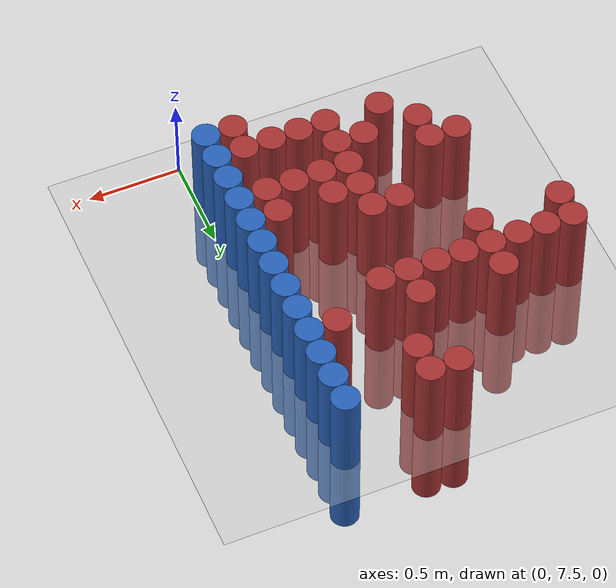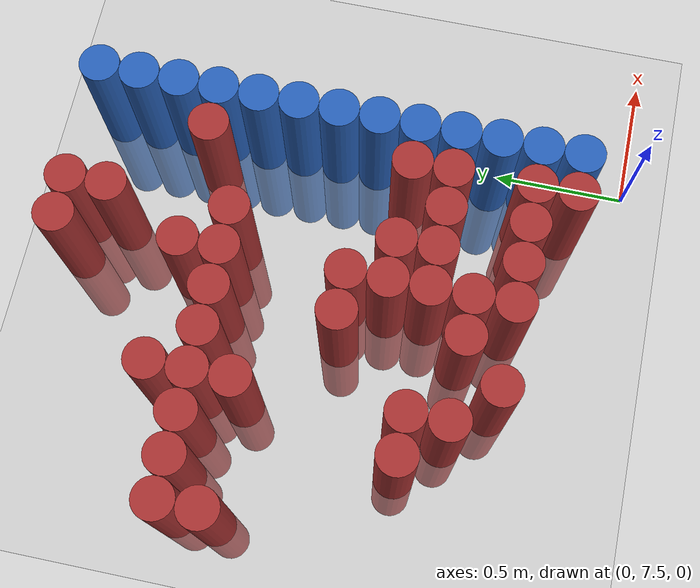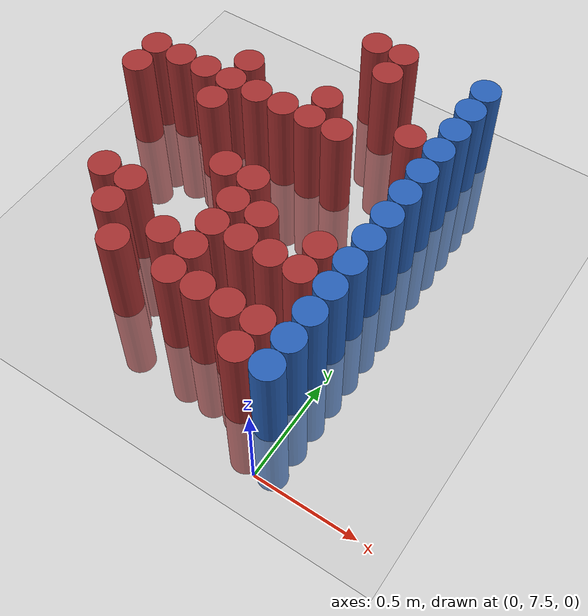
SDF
<sdf version="1.6">
 <world name="default">
  <model name="ground_plane">
   <static>1</static>
   <link name="link">
    <collision name="collision">
     <geometry><plane><normal>0 0 1</normal><size>100 100</size></plane></geometry>
     <surface><friction><ode><mu>100</mu><mu2>50</mu2></ode></friction></surface>
    </collision>
    <visual name="visual">
     <cast_shadows>0</cast_shadows>
     <geometry><plane><normal>0 0 1</normal><size>100 100</size></plane></geometry>
     <material>
      <script><uri>file://media/materials/scripts/gazebo.material</uri><name>Gazebo/Grey</name></script>
     </material>
    </visual>
   </link>
  </model>
  <model name="unit_cylinder_229">
   <static>1</static>
   <pose>-1.575000 8.775000 0.000000 0.000000 0.000000 0.000000</pose>
   <link name="link">
    <inertial>
     <mass>1</mass>
     <inertia><ixx>0.145833</ixx><ixy>0</ixy><ixz>0</ixz><iyy>0.145833</iyy><iyz>0</iyz><izz>0.125</izz></inertia>
    </inertial>
    <collision name="collision">
     <geometry><cylinder><radius>0.075000</radius><length>1</length></cylinder></geometry>
    </collision>
    <visual name="visual">
     <geometry><cylinder><radius>0.075000</radius><length>1</length></cylinder></geometry>
     <material>
      <ambient>0.648000 0.192000 0.192000 1</ambient>
      <diffuse>0.648000 0.192000 0.192000 1</diffuse>
     </material>
     <material>
      <script><name>Gazebo/Grey</name><uri>file://media/materials/scripts/gazebo.material</uri></script>
     </material>
    </visual>
   </link>
  </model>
  <model name="unit_cylinder_230">
   <static>1</static>
   <pose>-1.575000 8.925000 0.000000 0.000000 0.000000 0.000000</pose>
   <link name="link">
    <inertial>
     <mass>1</mass>
     <inertia><ixx>0.145833</ixx><ixy>0</ixy><ixz>0</ixz><iyy>0.145833</iyy><iyz>0</iyz><izz>0.125</izz></inertia>
    </inertial>
    <collision name="collision">
     <geometry><cylinder><radius>0.075000</radius><length>1</length></cylinder></geometry>
    </collision>
    <visual name="visual">
     <geometry><cylinder><radius>0.075000</radius><length>1</length></cylinder></geometry>
     <material>
      <ambient>0.648000 0.192000 0.192000 1</ambient>
      <diffuse>0.648000 0.192000 0.192000 1</diffuse>
     </material>
     <material>
      <script><name>Gazebo/Grey</name><uri>file://media/materials/scripts/gazebo.material</uri></script>
     </material>
    </visual>
   </link>
  </model>
  <model name="unit_cylinder_238">
   <static>1</static>
   <pose>-1.425000 8.925000 0.000000 0.000000 0.000000 0.000000</pose>
   <link name="link">
    <inertial>
     <mass>1</mass>
     <inertia><ixx>0.145833</ixx><ixy>0</ixy><ixz>0</ixz><iyy>0.145833</iyy><iyz>0</iyz><izz>0.125</izz></inertia>
    </inertial>
    <collision name="collision">
     <geometry><cylinder><radius>0.075000</radius><length>1</length></cylinder></geometry>
    </collision>
    <visual name="visual">
     <geometry><cylinder><radius>0.075000</radius><length>1</length></cylinder></geometry>
     <material>
      <ambient>0.648000 0.192000 0.192000 1</ambient>
      <diffuse>0.648000 0.192000 0.192000 1</diffuse>
     </material>
     <material>
      <script><name>Gazebo/Grey</name><uri>file://media/materials/scripts/gazebo.material</uri></script>
     </material>
    </visual>
   </link>
  </model>
  <model name="unit_cylinder_245">
   <static>1</static>
   <pose>-1.275000 8.175000 0.000000 0.000000 0.000000 0.000000</pose>
   <link name="link">
    <inertial>
     <mass>1</mass>
     <inertia><ixx>0.145833</ixx><ixy>0</ixy><ixz>0</ixz><iyy>0.145833</iyy><iyz>0</iyz><izz>0.125</izz></inertia>
    </inertial>
    <collision name="collision">
     <geometry><cylinder><radius>0.075000</radius><length>1</length></cylinder></geometry>
    </collision>
    <visual name="visual">
     <geometry><cylinder><radius>0.075000</radius><length>1</length></cylinder></geometry>
     <material>
      <ambient>0.648000 0.192000 0.192000 1</ambient>
      <diffuse>0.648000 0.192000 0.192000 1</diffuse>
     </material>
     <material>
      <script><name>Gazebo/Grey</name><uri>file://media/materials/scripts/gazebo.material</uri></script>
     </material>
    </visual>
   </link>
  </model>
  <model name="unit_cylinder_246">
   <static>1</static>
   <pose>-1.275000 8.925000 0.000000 0.000000 0.000000 0.000000</pose>
   <link name="link">
    <inertial>
     <mass>1</mass>
     <inertia><ixx>0.145833</ixx><ixy>0</ixy><ixz>0</ixz><iyy>0.145833</iyy><iyz>0</iyz><izz>0.125</izz></inertia>
    </inertial>
    <collision name="collision">
     <geometry><cylinder><radius>0.075000</radius><length>1</length></cylinder></geometry>
    </collision>
    <visual name="visual">
     <geometry><cylinder><radius>0.075000</radius><length>1</length></cylinder></geometry>
     <material>
      <ambient>0.648000 0.192000 0.192000 1</ambient>
      <diffuse>0.648000 0.192000 0.192000 1</diffuse>
     </material>
     <material>
      <script><name>Gazebo/Grey</name><uri>file://media/materials/scripts/gazebo.material</uri></script>
     </material>
    </visual>
   </link>
  </model>
  <model name="unit_cylinder_248">
   <static>1</static>
   <pose>-1.125000 8.025000 0.000000 0.000000 0.000000 0.000000</pose>
   <link name="link">
    <inertial>
     <mass>1</mass>
     <inertia><ixx>0.145833</ixx><ixy>0</ixy><ixz>0</ixz><iyy>0.145833</iyy><iyz>0</iyz><izz>0.125</izz></inertia>
    </inertial>
    <collision name="collision">
     <geometry><cylinder><radius>0.075000</radius><length>1</length></cylinder></geometry>
    </collision>
    <visual name="visual">
     <geometry><cylinder><radius>0.075000</radius><length>1</length></cylinder></geometry>
     <material>
      <ambient>0.648000 0.192000 0.192000 1</ambient>
      <diffuse>0.648000 0.192000 0.192000 1</diffuse>
     </material>
     <material>
      <script><name>Gazebo/Grey</name><uri>file://media/materials/scripts/gazebo.material</uri></script>
     </material>
    </visual>
   </link>
  </model>
  <model name="unit_cylinder_249">
   <static>1</static>
   <pose>-1.125000 8.175000 0.000000 0.000000 0.000000 0.000000</pose>
   <link name="link">
    <inertial>
     <mass>1</mass>
     <inertia><ixx>0.145833</ixx><ixy>0</ixy><ixz>0</ixz><iyy>0.145833</iyy><iyz>0</iyz><izz>0.125</izz></inertia>
    </inertial>
    <collision name="collision">
     <geometry><cylinder><radius>0.075000</radius><length>1</length></cylinder></geometry>
    </collision>
    <visual name="visual">
     <geometry><cylinder><radius>0.075000</radius><length>1</length></cylinder></geometry>
     <material>
      <ambient>0.648000 0.192000 0.192000 1</ambient>
      <diffuse>0.648000 0.192000 0.192000 1</diffuse>
     </material>
     <material>
      <script><name>Gazebo/Grey</name><uri>file://media/materials/scripts/gazebo.material</uri></script>
     </material>
    </visual>
   </link>
  </model>
  <model name="unit_cylinder_250">
   <static>1</static>
   <pose>-1.125000 8.775000 0.000000 0.000000 0.000000 0.000000</pose>
   <link name="link">
    <inertial>
     <mass>1</mass>
     <inertia><ixx>0.145833</ixx><ixy>0</ixy><ixz>0</ixz><iyy>0.145833</iyy><iyz>0</iyz><izz>0.125</izz></inertia>
    </inertial>
    <collision name="collision">
     <geometry><cylinder><radius>0.075000</radius><length>1</length></cylinder></geometry>
    </collision>
    <visual name="visual">
     <geometry><cylinder><radius>0.075000</radius><length>1</length></cylinder></geometry>
     <material>
      <ambient>0.648000 0.192000 0.192000 1</ambient>
      <diffuse>0.648000 0.192000 0.192000 1</diffuse>
     </material>
     <material>
      <script><name>Gazebo/Grey</name><uri>file://media/materials/scripts/gazebo.material</uri></script>
     </material>
    </visual>
   </link>
  </model>
  <model name="unit_cylinder_251">
   <static>1</static>
   <pose>-1.125000 8.925000 0.000000 0.000000 0.000000 0.000000</pose>
   <link name="link">
    <inertial>
     <mass>1</mass>
     <inertia><ixx>0.145833</ixx><ixy>0</ixy><ixz>0</ixz><iyy>0.145833</iyy><iyz>0</iyz><izz>0.125</izz></inertia>
    </inertial>
    <collision name="collision">
     <geometry><cylinder><radius>0.075000</radius><length>1</length></cylinder></geometry>
    </collision>
    <visual name="visual">
     <geometry><cylinder><radius>0.075000</radius><length>1</length></cylinder></geometry>
     <material>
      <ambient>0.648000 0.192000 0.192000 1</ambient>
      <diffuse>0.648000 0.192000 0.192000 1</diffuse>
     </material>
     <material>
      <script><name>Gazebo/Grey</name><uri>file://media/materials/scripts/gazebo.material</uri></script>
     </material>
    </visual>
   </link>
  </model>
  <model name="unit_cylinder_252">
   <static>1</static>
   <pose>-1.125000 9.075000 0.000000 0.000000 0.000000 0.000000</pose>
   <link name="link">
    <inertial>
     <mass>1</mass>
     <inertia><ixx>0.145833</ixx><ixy>0</ixy><ixz>0</ixz><iyy>0.145833</iyy><iyz>0</iyz><izz>0.125</izz></inertia>
    </inertial>
    <collision name="collision">
     <geometry><cylinder><radius>0.075000</radius><length>1</length></cylinder></geometry>
    </collision>
    <visual name="visual">
     <geometry><cylinder><radius>0.075000</radius><length>1</length></cylinder></geometry>
     <material>
      <ambient>0.648000 0.192000 0.192000 1</ambient>
      <diffuse>0.648000 0.192000 0.192000 1</diffuse>
     </material>
     <material>
      <script><name>Gazebo/Grey</name><uri>file://media/materials/scripts/gazebo.material</uri></script>
     </material>
    </visual>
   </link>
  </model>
  <model name="unit_cylinder_253">
   <static>1</static>
   <pose>-0.975000 7.875000 0.000000 0.000000 0.000000 0.000000</pose>
   <link name="link">
    <inertial>
     <mass>1</mass>
     <inertia><ixx>0.145833</ixx><ixy>0</ixy><ixz>0</ixz><iyy>0.145833</iyy><iyz>0</iyz><izz>0.125</izz></inertia>
    </inertial>
    <collision name="collision">
     <geometry><cylinder><radius>0.075000</radius><length>1</length></cylinder></geometry>
    </collision>
    <visual name="visual">
     <geometry><cylinder><radius>0.075000</radius><length>1</length></cylinder></geometry>
     <material>
      <ambient>0.648000 0.192000 0.192000 1</ambient>
      <diffuse>0.648000 0.192000 0.192000 1</diffuse>
     </material>
     <material>
      <script><name>Gazebo/Grey</name><uri>file://media/materials/scripts/gazebo.material</uri></script>
     </material>
    </visual>
   </link>
  </model>
  <model name="unit_cylinder_254">
   <static>1</static>
   <pose>-0.975000 8.925000 0.000000 0.000000 0.000000 0.000000</pose>
   <link name="link">
    <inertial>
     <mass>1</mass>
     <inertia><ixx>0.145833</ixx><ixy>0</ixy><ixz>0</ixz><iyy>0.145833</iyy><iyz>0</iyz><izz>0.125</izz></inertia>
    </inertial>
    <collision name="collision">
     <geometry><cylinder><radius>0.075000</radius><length>1</length></cylinder></geometry>
    </collision>
    <visual name="visual">
     <geometry><cylinder><radius>0.075000</radius><length>1</length></cylinder></geometry>
     <material>
      <ambient>0.648000 0.192000 0.192000 1</ambient>
      <diffuse>0.648000 0.192000 0.192000 1</diffuse>
     </material>
     <material>
      <script><name>Gazebo/Grey</name><uri>file://media/materials/scripts/gazebo.material</uri></script>
     </material>
    </visual>
   </link>
  </model>
  <model name="unit_cylinder_256">
   <static>1</static>
   <pose>-0.825000 8.025000 0.000000 0.000000 0.000000 0.000000</pose>
   <link name="link">
    <inertial>
     <mass>1</mass>
     <inertia><ixx>0.145833</ixx><ixy>0</ixy><ixz>0</ixz><iyy>0.145833</iyy><iyz>0</iyz><izz>0.125</izz></inertia>
    </inertial>
    <collision name="collision">
     <geometry><cylinder><radius>0.075000</radius><length>1</length></cylinder></geometry>
    </collision>
    <visual name="visual">
     <geometry><cylinder><radius>0.075000</radius><length>1</length></cylinder></geometry>
     <material>
      <ambient>0.648000 0.192000 0.192000 1</ambient>
      <diffuse>0.648000 0.192000 0.192000 1</diffuse>
     </material>
     <material>
      <script><name>Gazebo/Grey</name><uri>file://media/materials/scripts/gazebo.material</uri></script>
     </material>
    </visual>
   </link>
  </model>
  <model name="unit_cylinder_257">
   <static>1</static>
   <pose>-0.825000 8.475000 0.000000 0.000000 0.000000 0.000000</pose>
   <link name="link">
    <inertial>
     <mass>1</mass>
     <inertia><ixx>0.145833</ixx><ixy>0</ixy><ixz>0</ixz><iyy>0.145833</iyy><iyz>0</iyz><izz>0.125</izz></inertia>
    </inertial>
    <collision name="collision">
     <geometry><cylinder><radius>0.075000</radius><length>1</length></cylinder></geometry>
    </collision>
    <visual name="visual">
     <geometry><cylinder><radius>0.075000</radius><length>1</length></cylinder></geometry>
     <material>
      <ambient>0.648000 0.192000 0.192000 1</ambient>
      <diffuse>0.648000 0.192000 0.192000 1</diffuse>
     </material>
     <material>
      <script><name>Gazebo/Grey</name><uri>file://media/materials/scripts/gazebo.material</uri></script>
     </material>
    </visual>
   </link>
  </model>
  <model name="unit_cylinder_258">
   <static>1</static>
   <pose>-0.825000 8.925000 0.000000 0.000000 0.000000 0.000000</pose>
   <link name="link">
    <inertial>
     <mass>1</mass>
     <inertia><ixx>0.145833</ixx><ixy>0</ixy><ixz>0</ixz><iyy>0.145833</iyy><iyz>0</iyz><izz>0.125</izz></inertia>
    </inertial>
    <collision name="collision">
     <geometry><cylinder><radius>0.075000</radius><length>1</length></cylinder></geometry>
    </collision>
    <visual name="visual">
     <geometry><cylinder><radius>0.075000</radius><length>1</length></cylinder></geometry>
     <material>
      <ambient>0.648000 0.192000 0.192000 1</ambient>
      <diffuse>0.648000 0.192000 0.192000 1</diffuse>
     </material>
     <material>
      <script><name>Gazebo/Grey</name><uri>file://media/materials/scripts/gazebo.material</uri></script>
     </material>
    </visual>
   </link>
  </model>
  <model name="unit_cylinder_264">
   <static>1</static>
   <pose>-0.675000 7.875000 0.000000 0.000000 0.000000 0.000000</pose>
   <link name="link">
    <inertial>
     <mass>1</mass>
     <inertia><ixx>0.145833</ixx><ixy>0</ixy><ixz>0</ixz><iyy>0.145833</iyy><iyz>0</iyz><izz>0.125</izz></inertia>
    </inertial>
    <collision name="collision">
     <geometry><cylinder><radius>0.075000</radius><length>1</length></cylinder></geometry>
    </collision>
    <visual name="visual">
     <geometry><cylinder><radius>0.075000</radius><length>1</length></cylinder></geometry>
     <material>
      <ambient>0.648000 0.192000 0.192000 1</ambient>
      <diffuse>0.648000 0.192000 0.192000 1</diffuse>
     </material>
     <material>
      <script><name>Gazebo/Grey</name><uri>file://media/materials/scripts/gazebo.material</uri></script>
     </material>
    </visual>
   </link>
  </model>
  <model name="unit_cylinder_265">
   <static>1</static>
   <pose>-0.675000 8.025000 0.000000 0.000000 0.000000 0.000000</pose>
   <link name="link">
    <inertial>
     <mass>1</mass>
     <inertia><ixx>0.145833</ixx><ixy>0</ixy><ixz>0</ixz><iyy>0.145833</iyy><iyz>0</iyz><izz>0.125</izz></inertia>
    </inertial>
    <collision name="collision">
     <geometry><cylinder><radius>0.075000</radius><length>1</length></cylinder></geometry>
    </collision>
    <visual name="visual">
     <geometry><cylinder><radius>0.075000</radius><length>1</length></cylinder></geometry>
     <material>
      <ambient>0.648000 0.192000 0.192000 1</ambient>
      <diffuse>0.648000 0.192000 0.192000 1</diffuse>
     </material>
     <material>
      <script><name>Gazebo/Grey</name><uri>file://media/materials/scripts/gazebo.material</uri></script>
     </material>
    </visual>
   </link>
  </model>
  <model name="unit_cylinder_266">
   <static>1</static>
   <pose>-0.675000 8.175000 0.000000 0.000000 0.000000 0.000000</pose>
   <link name="link">
    <inertial>
     <mass>1</mass>
     <inertia><ixx>0.145833</ixx><ixy>0</ixy><ixz>0</ixz><iyy>0.145833</iyy><iyz>0</iyz><izz>0.125</izz></inertia>
    </inertial>
    <collision name="collision">
     <geometry><cylinder><radius>0.075000</radius><length>1</length></cylinder></geometry>
    </collision>
    <visual name="visual">
     <geometry><cylinder><radius>0.075000</radius><length>1</length></cylinder></geometry>
     <material>
      <ambient>0.648000 0.192000 0.192000 1</ambient>
      <diffuse>0.648000 0.192000 0.192000 1</diffuse>
     </material>
     <material>
      <script><name>Gazebo/Grey</name><uri>file://media/materials/scripts/gazebo.material</uri></script>
     </material>
    </visual>
   </link>
  </model>
  <model name="unit_cylinder_267">
   <static>1</static>
   <pose>-0.675000 8.325000 0.000000 0.000000 0.000000 0.000000</pose>
   <link name="link">
    <inertial>
     <mass>1</mass>
     <inertia><ixx>0.145833</ixx><ixy>0</ixy><ixz>0</ixz><iyy>0.145833</iyy><iyz>0</iyz><izz>0.125</izz></inertia>
    </inertial>
    <collision name="collision">
     <geometry><cylinder><radius>0.075000</radius><length>1</length></cylinder></geometry>
    </collision>
    <visual name="visual">
     <geometry><cylinder><radius>0.075000</radius><length>1</length></cylinder></geometry>
     <material>
      <ambient>0.648000 0.192000 0.192000 1</ambient>
      <diffuse>0.648000 0.192000 0.192000 1</diffuse>
     </material>
     <material>
      <script><name>Gazebo/Grey</name><uri>file://media/materials/scripts/gazebo.material</uri></script>
     </material>
    </visual>
   </link>
  </model>
  <model name="unit_cylinder_268">
   <static>1</static>
   <pose>-0.675000 8.475000 0.000000 0.000000 0.000000 0.000000</pose>
   <link name="link">
    <inertial>
     <mass>1</mass>
     <inertia><ixx>0.145833</ixx><ixy>0</ixy><ixz>0</ixz><iyy>0.145833</iyy><iyz>0</iyz><izz>0.125</izz></inertia>
    </inertial>
    <collision name="collision">
     <geometry><cylinder><radius>0.075000</radius><length>1</length></cylinder></geometry>
    </collision>
    <visual name="visual">
     <geometry><cylinder><radius>0.075000</radius><length>1</length></cylinder></geometry>
     <material>
      <ambient>0.648000 0.192000 0.192000 1</ambient>
      <diffuse>0.648000 0.192000 0.192000 1</diffuse>
     </material>
     <material>
      <script><name>Gazebo/Grey</name><uri>file://media/materials/scripts/gazebo.material</uri></script>
     </material>
    </visual>
   </link>
  </model>
  <model name="unit_cylinder_269">
   <static>1</static>
   <pose>-0.675000 8.925000 0.000000 0.000000 0.000000 0.000000</pose>
   <link name="link">
    <inertial>
     <mass>1</mass>
     <inertia><ixx>0.145833</ixx><ixy>0</ixy><ixz>0</ixz><iyy>0.145833</iyy><iyz>0</iyz><izz>0.125</izz></inertia>
    </inertial>
    <collision name="collision">
     <geometry><cylinder><radius>0.075000</radius><length>1</length></cylinder></geometry>
    </collision>
    <visual name="visual">
     <geometry><cylinder><radius>0.075000</radius><length>1</length></cylinder></geometry>
     <material>
      <ambient>0.648000 0.192000 0.192000 1</ambient>
      <diffuse>0.648000 0.192000 0.192000 1</diffuse>
     </material>
     <material>
      <script><name>Gazebo/Grey</name><uri>file://media/materials/scripts/gazebo.material</uri></script>
     </material>
    </visual>
   </link>
  </model>
  <model name="unit_cylinder_270">
   <static>1</static>
   <pose>-0.675000 9.075000 0.000000 0.000000 0.000000 0.000000</pose>
   <link name="link">
    <inertial>
     <mass>1</mass>
     <inertia><ixx>0.145833</ixx><ixy>0</ixy><ixz>0</ixz><iyy>0.145833</iyy><iyz>0</iyz><izz>0.125</izz></inertia>
    </inertial>
    <collision name="collision">
     <geometry><cylinder><radius>0.075000</radius><length>1</length></cylinder></geometry>
    </collision>
    <visual name="visual">
     <geometry><cylinder><radius>0.075000</radius><length>1</length></cylinder></geometry>
     <material>
      <ambient>0.648000 0.192000 0.192000 1</ambient>
      <diffuse>0.648000 0.192000 0.192000 1</diffuse>
     </material>
     <material>
      <script><name>Gazebo/Grey</name><uri>file://media/materials/scripts/gazebo.material</uri></script>
     </material>
    </visual>
   </link>
  </model>
  <model name="unit_cylinder_271">
   <static>1</static>
   <pose>-0.675000 9.525000 0.000000 0.000000 0.000000 0.000000</pose>
   <link name="link">
    <inertial>
     <mass>1</mass>
     <inertia><ixx>0.145833</ixx><ixy>0</ixy><ixz>0</ixz><iyy>0.145833</iyy><iyz>0</iyz><izz>0.125</izz></inertia>
    </inertial>
    <collision name="collision">
     <geometry><cylinder><radius>0.075000</radius><length>1</length></cylinder></geometry>
    </collision>
    <visual name="visual">
     <geometry><cylinder><radius>0.075000</radius><length>1</length></cylinder></geometry>
     <material>
      <ambient>0.648000 0.192000 0.192000 1</ambient>
      <diffuse>0.648000 0.192000 0.192000 1</diffuse>
     </material>
     <material>
      <script><name>Gazebo/Grey</name><uri>file://media/materials/scripts/gazebo.material</uri></script>
     </material>
    </visual>
   </link>
  </model>
  <model name="unit_cylinder_277">
   <static>1</static>
   <pose>-0.525000 7.875000 0.000000 0.000000 0.000000 0.000000</pose>
   <link name="link">
    <inertial>
     <mass>1</mass>
     <inertia><ixx>0.145833</ixx><ixy>0</ixy><ixz>0</ixz><iyy>0.145833</iyy><iyz>0</iyz><izz>0.125</izz></inertia>
    </inertial>
    <collision name="collision">
     <geometry><cylinder><radius>0.075000</radius><length>1</length></cylinder></geometry>
    </collision>
    <visual name="visual">
     <geometry><cylinder><radius>0.075000</radius><length>1</length></cylinder></geometry>
     <material>
      <ambient>0.648000 0.192000 0.192000 1</ambient>
      <diffuse>0.648000 0.192000 0.192000 1</diffuse>
     </material>
     <material>
      <script><name>Gazebo/Grey</name><uri>file://media/materials/scripts/gazebo.material</uri></script>
     </material>
    </visual>
   </link>
  </model>
  <model name="unit_cylinder_278">
   <static>1</static>
   <pose>-0.525000 8.175000 0.000000 0.000000 0.000000 0.000000</pose>
   <link name="link">
    <inertial>
     <mass>1</mass>
     <inertia><ixx>0.145833</ixx><ixy>0</ixy><ixz>0</ixz><iyy>0.145833</iyy><iyz>0</iyz><izz>0.125</izz></inertia>
    </inertial>
    <collision name="collision">
     <geometry><cylinder><radius>0.075000</radius><length>1</length></cylinder></geometry>
    </collision>
    <visual name="visual">
     <geometry><cylinder><radius>0.075000</radius><length>1</length></cylinder></geometry>
     <material>
      <ambient>0.648000 0.192000 0.192000 1</ambient>
      <diffuse>0.648000 0.192000 0.192000 1</diffuse>
     </material>
     <material>
      <script><name>Gazebo/Grey</name><uri>file://media/materials/scripts/gazebo.material</uri></script>
     </material>
    </visual>
   </link>
  </model>
  <model name="unit_cylinder_279">
   <static>1</static>
   <pose>-0.525000 8.325000 0.000000 0.000000 0.000000 0.000000</pose>
   <link name="link">
    <inertial>
     <mass>1</mass>
     <inertia><ixx>0.145833</ixx><ixy>0</ixy><ixz>0</ixz><iyy>0.145833</iyy><iyz>0</iyz><izz>0.125</izz></inertia>
    </inertial>
    <collision name="collision">
     <geometry><cylinder><radius>0.075000</radius><length>1</length></cylinder></geometry>
    </collision>
    <visual name="visual">
     <geometry><cylinder><radius>0.075000</radius><length>1</length></cylinder></geometry>
     <material>
      <ambient>0.648000 0.192000 0.192000 1</ambient>
      <diffuse>0.648000 0.192000 0.192000 1</diffuse>
     </material>
     <material>
      <script><name>Gazebo/Grey</name><uri>file://media/materials/scripts/gazebo.material</uri></script>
     </material>
    </visual>
   </link>
  </model>
  <model name="unit_cylinder_280">
   <static>1</static>
   <pose>-0.525000 8.925000 0.000000 0.000000 0.000000 0.000000</pose>
   <link name="link">
    <inertial>
     <mass>1</mass>
     <inertia><ixx>0.145833</ixx><ixy>0</ixy><ixz>0</ixz><iyy>0.145833</iyy><iyz>0</iyz><izz>0.125</izz></inertia>
    </inertial>
    <collision name="collision">
     <geometry><cylinder><radius>0.075000</radius><length>1</length></cylinder></geometry>
    </collision>
    <visual name="visual">
     <geometry><cylinder><radius>0.075000</radius><length>1</length></cylinder></geometry>
     <material>
      <ambient>0.648000 0.192000 0.192000 1</ambient>
      <diffuse>0.648000 0.192000 0.192000 1</diffuse>
     </material>
     <material>
      <script><name>Gazebo/Grey</name><uri>file://media/materials/scripts/gazebo.material</uri></script>
     </material>
    </visual>
   </link>
  </model>
  <model name="unit_cylinder_281">
   <static>1</static>
   <pose>-0.525000 9.375000 0.000000 0.000000 0.000000 0.000000</pose>
   <link name="link">
    <inertial>
     <mass>1</mass>
     <inertia><ixx>0.145833</ixx><ixy>0</ixy><ixz>0</ixz><iyy>0.145833</iyy><iyz>0</iyz><izz>0.125</izz></inertia>
    </inertial>
    <collision name="collision">
     <geometry><cylinder><radius>0.075000</radius><length>1</length></cylinder></geometry>
    </collision>
    <visual name="visual">
     <geometry><cylinder><radius>0.075000</radius><length>1</length></cylinder></geometry>
     <material>
      <ambient>0.648000 0.192000 0.192000 1</ambient>
      <diffuse>0.648000 0.192000 0.192000 1</diffuse>
     </material>
     <material>
      <script><name>Gazebo/Grey</name><uri>file://media/materials/scripts/gazebo.material</uri></script>
     </material>
    </visual>
   </link>
  </model>
  <model name="unit_cylinder_282">
   <static>1</static>
   <pose>-0.525000 9.525000 0.000000 0.000000 0.000000 0.000000</pose>
   <link name="link">
    <inertial>
     <mass>1</mass>
     <inertia><ixx>0.145833</ixx><ixy>0</ixy><ixz>0</ixz><iyy>0.145833</iyy><iyz>0</iyz><izz>0.125</izz></inertia>
    </inertial>
    <collision name="collision">
     <geometry><cylinder><radius>0.075000</radius><length>1</length></cylinder></geometry>
    </collision>
    <visual name="visual">
     <geometry><cylinder><radius>0.075000</radius><length>1</length></cylinder></geometry>
     <material>
      <ambient>0.648000 0.192000 0.192000 1</ambient>
      <diffuse>0.648000 0.192000 0.192000 1</diffuse>
     </material>
     <material>
      <script><name>Gazebo/Grey</name><uri>file://media/materials/scripts/gazebo.material</uri></script>
     </material>
    </visual>
   </link>
  </model>
  <model name="unit_cylinder_291">
   <static>1</static>
   <pose>-0.375000 7.875000 0.000000 0.000000 0.000000 0.000000</pose>
   <link name="link">
    <inertial>
     <mass>1</mass>
     <inertia><ixx>0.145833</ixx><ixy>0</ixy><ixz>0</ixz><iyy>0.145833</iyy><iyz>0</iyz><izz>0.125</izz></inertia>
    </inertial>
    <collision name="collision">
     <geometry><cylinder><radius>0.075000</radius><length>1</length></cylinder></geometry>
    </collision>
    <visual name="visual">
     <geometry><cylinder><radius>0.075000</radius><length>1</length></cylinder></geometry>
     <material>
      <ambient>0.648000 0.192000 0.192000 1</ambient>
      <diffuse>0.648000 0.192000 0.192000 1</diffuse>
     </material>
     <material>
      <script><name>Gazebo/Grey</name><uri>file://media/materials/scripts/gazebo.material</uri></script>
     </material>
    </visual>
   </link>
  </model>
  <model name="unit_cylinder_292">
   <static>1</static>
   <pose>-0.375000 8.175000 0.000000 0.000000 0.000000 0.000000</pose>
   <link name="link">
    <inertial>
     <mass>1</mass>
     <inertia><ixx>0.145833</ixx><ixy>0</ixy><ixz>0</ixz><iyy>0.145833</iyy><iyz>0</iyz><izz>0.125</izz></inertia>
    </inertial>
    <collision name="collision">
     <geometry><cylinder><radius>0.075000</radius><length>1</length></cylinder></geometry>
    </collision>
    <visual name="visual">
     <geometry><cylinder><radius>0.075000</radius><length>1</length></cylinder></geometry>
     <material>
      <ambient>0.648000 0.192000 0.192000 1</ambient>
      <diffuse>0.648000 0.192000 0.192000 1</diffuse>
     </material>
     <material>
      <script><name>Gazebo/Grey</name><uri>file://media/materials/scripts/gazebo.material</uri></script>
     </material>
    </visual>
   </link>
  </model>
  <model name="unit_cylinder_306">
   <static>1</static>
   <pose>-0.225000 7.725000 0.000000 0.000000 0.000000 0.000000</pose>
   <link name="link">
    <inertial>
     <mass>1</mass>
     <inertia><ixx>0.145833</ixx><ixy>0</ixy><ixz>0</ixz><iyy>0.145833</iyy><iyz>0</iyz><izz>0.125</izz></inertia>
    </inertial>
    <collision name="collision">
     <geometry><cylinder><radius>0.075000</radius><length>1</length></cylinder></geometry>
    </collision>
    <visual name="visual">
     <geometry><cylinder><radius>0.075000</radius><length>1</length></cylinder></geometry>
     <material>
      <ambient>0.648000 0.192000 0.192000 1</ambient>
      <diffuse>0.648000 0.192000 0.192000 1</diffuse>
     </material>
     <material>
      <script><name>Gazebo/Grey</name><uri>file://media/materials/scripts/gazebo.material</uri></script>
     </material>
    </visual>
   </link>
  </model>
  <model name="unit_cylinder_307">
   <static>1</static>
   <pose>-0.225000 7.875000 0.000000 0.000000 0.000000 0.000000</pose>
   <link name="link">
    <inertial>
     <mass>1</mass>
     <inertia><ixx>0.145833</ixx><ixy>0</ixy><ixz>0</ixz><iyy>0.145833</iyy><iyz>0</iyz><izz>0.125</izz></inertia>
    </inertial>
    <collision name="collision">
     <geometry><cylinder><radius>0.075000</radius><length>1</length></cylinder></geometry>
    </collision>
    <visual name="visual">
     <geometry><cylinder><radius>0.075000</radius><length>1</length></cylinder></geometry>
     <material>
      <ambient>0.648000 0.192000 0.192000 1</ambient>
      <diffuse>0.648000 0.192000 0.192000 1</diffuse>
     </material>
     <material>
      <script><name>Gazebo/Grey</name><uri>file://media/materials/scripts/gazebo.material</uri></script>
     </material>
    </visual>
   </link>
  </model>
  <model name="unit_cylinder_308">
   <static>1</static>
   <pose>-0.225000 8.175000 0.000000 0.000000 0.000000 0.000000</pose>
   <link name="link">
    <inertial>
     <mass>1</mass>
     <inertia><ixx>0.145833</ixx><ixy>0</ixy><ixz>0</ixz><iyy>0.145833</iyy><iyz>0</iyz><izz>0.125</izz></inertia>
    </inertial>
    <collision name="collision">
     <geometry><cylinder><radius>0.075000</radius><length>1</length></cylinder></geometry>
    </collision>
    <visual name="visual">
     <geometry><cylinder><radius>0.075000</radius><length>1</length></cylinder></geometry>
     <material>
      <ambient>0.648000 0.192000 0.192000 1</ambient>
      <diffuse>0.648000 0.192000 0.192000 1</diffuse>
     </material>
     <material>
      <script><name>Gazebo/Grey</name><uri>file://media/materials/scripts/gazebo.material</uri></script>
     </material>
    </visual>
   </link>
  </model>
  <model name="unit_cylinder_309">
   <static>1</static>
   <pose>-0.225000 8.325000 0.000000 0.000000 0.000000 0.000000</pose>
   <link name="link">
    <inertial>
     <mass>1</mass>
     <inertia><ixx>0.145833</ixx><ixy>0</ixy><ixz>0</ixz><iyy>0.145833</iyy><iyz>0</iyz><izz>0.125</izz></inertia>
    </inertial>
    <collision name="collision">
     <geometry><cylinder><radius>0.075000</radius><length>1</length></cylinder></geometry>
    </collision>
    <visual name="visual">
     <geometry><cylinder><radius>0.075000</radius><length>1</length></cylinder></geometry>
     <material>
      <ambient>0.648000 0.192000 0.192000 1</ambient>
      <diffuse>0.648000 0.192000 0.192000 1</diffuse>
     </material>
     <material>
      <script><name>Gazebo/Grey</name><uri>file://media/materials/scripts/gazebo.material</uri></script>
     </material>
    </visual>
   </link>
  </model>
  <model name="unit_cylinder_310">
   <static>1</static>
   <pose>-0.225000 9.075000 0.000000 0.000000 0.000000 0.000000</pose>
   <link name="link">
    <inertial>
     <mass>1</mass>
     <inertia><ixx>0.145833</ixx><ixy>0</ixy><ixz>0</ixz><iyy>0.145833</iyy><iyz>0</iyz><izz>0.125</izz></inertia>
    </inertial>
    <collision name="collision">
     <geometry><cylinder><radius>0.075000</radius><length>1</length></cylinder></geometry>
    </collision>
    <visual name="visual">
     <geometry><cylinder><radius>0.075000</radius><length>1</length></cylinder></geometry>
     <material>
      <ambient>0.648000 0.192000 0.192000 1</ambient>
      <diffuse>0.648000 0.192000 0.192000 1</diffuse>
     </material>
     <material>
      <script><name>Gazebo/Grey</name><uri>file://media/materials/scripts/gazebo.material</uri></script>
     </material>
    </visual>
   </link>
  </model>
  <model name="unit_cylinder_328">
   <static>1</static>
   <pose>-0.075000 7.725000 0.000000 0.000000 0.000000 0.000000</pose>
   <link name="link">
    <inertial>
     <mass>1</mass>
     <inertia><ixx>0.145833</ixx><ixy>0</ixy><ixz>0</ixz><iyy>0.145833</iyy><iyz>0</iyz><izz>0.125</izz></inertia>
    </inertial>
    <collision name="collision">
     <geometry><cylinder><radius>0.075000</radius><length>1</length></cylinder></geometry>
    </collision>
    <visual name="visual">
     <geometry><cylinder><radius>0.075000</radius><length>1</length></cylinder></geometry>
     <material>
      <ambient>0.152000 0.379000 0.720000 1</ambient>
      <diffuse>0.152000 0.379000 0.720000 1</diffuse>
     </material>
     <material>
      <script><name>Gazebo/Grey</name><uri>file://media/materials/scripts/gazebo.material</uri></script>
     </material>
    </visual>
   </link>
  </model>
  <model name="unit_cylinder_329">
   <static>1</static>
   <pose>-0.075000 7.875000 0.000000 0.000000 0.000000 0.000000</pose>
   <link name="link">
    <inertial>
     <mass>1</mass>
     <inertia><ixx>0.145833</ixx><ixy>0</ixy><ixz>0</ixz><iyy>0.145833</iyy><iyz>0</iyz><izz>0.125</izz></inertia>
    </inertial>
    <collision name="collision">
     <geometry><cylinder><radius>0.075000</radius><length>1</length></cylinder></geometry>
    </collision>
    <visual name="visual">
     <geometry><cylinder><radius>0.075000</radius><length>1</length></cylinder></geometry>
     <material>
      <ambient>0.152000 0.379000 0.720000 1</ambient>
      <diffuse>0.152000 0.379000 0.720000 1</diffuse>
     </material>
     <material>
      <script><name>Gazebo/Grey</name><uri>file://media/materials/scripts/gazebo.material</uri></script>
     </material>
    </visual>
   </link>
  </model>
  <model name="unit_cylinder_330">
   <static>1</static>
   <pose>-0.075000 8.025000 0.000000 0.000000 0.000000 0.000000</pose>
   <link name="link">
    <inertial>
     <mass>1</mass>
     <inertia><ixx>0.145833</ixx><ixy>0</ixy><ixz>0</ixz><iyy>0.145833</iyy><iyz>0</iyz><izz>0.125</izz></inertia>
    </inertial>
    <collision name="collision">
     <geometry><cylinder><radius>0.075000</radius><length>1</length></cylinder></geometry>
    </collision>
    <visual name="visual">
     <geometry><cylinder><radius>0.075000</radius><length>1</length></cylinder></geometry>
     <material>
      <ambient>0.152000 0.379000 0.720000 1</ambient>
      <diffuse>0.152000 0.379000 0.720000 1</diffuse>
     </material>
     <material>
      <script><name>Gazebo/Grey</name><uri>file://media/materials/scripts/gazebo.material</uri></script>
     </material>
    </visual>
   </link>
  </model>
  <model name="unit_cylinder_331">
   <static>1</static>
   <pose>-0.075000 8.175000 0.000000 0.000000 0.000000 0.000000</pose>
   <link name="link">
    <inertial>
     <mass>1</mass>
     <inertia><ixx>0.145833</ixx><ixy>0</ixy><ixz>0</ixz><iyy>0.145833</iyy><iyz>0</iyz><izz>0.125</izz></inertia>
    </inertial>
    <collision name="collision">
     <geometry><cylinder><radius>0.075000</radius><length>1</length></cylinder></geometry>
    </collision>
    <visual name="visual">
     <geometry><cylinder><radius>0.075000</radius><length>1</length></cylinder></geometry>
     <material>
      <ambient>0.152000 0.379000 0.720000 1</ambient>
      <diffuse>0.152000 0.379000 0.720000 1</diffuse>
     </material>
     <material>
      <script><name>Gazebo/Grey</name><uri>file://media/materials/scripts/gazebo.material</uri></script>
     </material>
    </visual>
   </link>
  </model>
  <model name="unit_cylinder_332">
   <static>1</static>
   <pose>-0.075000 8.325000 0.000000 0.000000 0.000000 0.000000</pose>
   <link name="link">
    <inertial>
     <mass>1</mass>
     <inertia><ixx>0.145833</ixx><ixy>0</ixy><ixz>0</ixz><iyy>0.145833</iyy><iyz>0</iyz><izz>0.125</izz></inertia>
    </inertial>
    <collision name="collision">
     <geometry><cylinder><radius>0.075000</radius><length>1</length></cylinder></geometry>
    </collision>
    <visual name="visual">
     <geometry><cylinder><radius>0.075000</radius><length>1</length></cylinder></geometry>
     <material>
      <ambient>0.152000 0.379000 0.720000 1</ambient>
      <diffuse>0.152000 0.379000 0.720000 1</diffuse>
     </material>
     <material>
      <script><name>Gazebo/Grey</name><uri>file://media/materials/scripts/gazebo.material</uri></script>
     </material>
    </visual>
   </link>
  </model>
  <model name="unit_cylinder_333">
   <static>1</static>
   <pose>-0.075000 8.475000 0.000000 0.000000 0.000000 0.000000</pose>
   <link name="link">
    <inertial>
     <mass>1</mass>
     <inertia><ixx>0.145833</ixx><ixy>0</ixy><ixz>0</ixz><iyy>0.145833</iyy><iyz>0</iyz><izz>0.125</izz></inertia>
    </inertial>
    <collision name="collision">
     <geometry><cylinder><radius>0.075000</radius><length>1</length></cylinder></geometry>
    </collision>
    <visual name="visual">
     <geometry><cylinder><radius>0.075000</radius><length>1</length></cylinder></geometry>
     <material>
      <ambient>0.152000 0.379000 0.720000 1</ambient>
      <diffuse>0.152000 0.379000 0.720000 1</diffuse>
     </material>
     <material>
      <script><name>Gazebo/Grey</name><uri>file://media/materials/scripts/gazebo.material</uri></script>
     </material>
    </visual>
   </link>
  </model>
  <model name="unit_cylinder_334">
   <static>1</static>
   <pose>-0.075000 8.625000 0.000000 0.000000 0.000000 0.000000</pose>
   <link name="link">
    <inertial>
     <mass>1</mass>
     <inertia><ixx>0.145833</ixx><ixy>0</ixy><ixz>0</ixz><iyy>0.145833</iyy><iyz>0</iyz><izz>0.125</izz></inertia>
    </inertial>
    <collision name="collision">
     <geometry><cylinder><radius>0.075000</radius><length>1</length></cylinder></geometry>
    </collision>
    <visual name="visual">
     <geometry><cylinder><radius>0.075000</radius><length>1</length></cylinder></geometry>
     <material>
      <ambient>0.152000 0.379000 0.720000 1</ambient>
      <diffuse>0.152000 0.379000 0.720000 1</diffuse>
     </material>
     <material>
      <script><name>Gazebo/Grey</name><uri>file://media/materials/scripts/gazebo.material</uri></script>
     </material>
    </visual>
   </link>
  </model>
  <model name="unit_cylinder_335">
   <static>1</static>
   <pose>-0.075000 8.775000 0.000000 0.000000 0.000000 0.000000</pose>
   <link name="link">
    <inertial>
     <mass>1</mass>
     <inertia><ixx>0.145833</ixx><ixy>0</ixy><ixz>0</ixz><iyy>0.145833</iyy><iyz>0</iyz><izz>0.125</izz></inertia>
    </inertial>
    <collision name="collision">
     <geometry><cylinder><radius>0.075000</radius><length>1</length></cylinder></geometry>
    </collision>
    <visual name="visual">
     <geometry><cylinder><radius>0.075000</radius><length>1</length></cylinder></geometry>
     <material>
      <ambient>0.152000 0.379000 0.720000 1</ambient>
      <diffuse>0.152000 0.379000 0.720000 1</diffuse>
     </material>
     <material>
      <script><name>Gazebo/Grey</name><uri>file://media/materials/scripts/gazebo.material</uri></script>
     </material>
    </visual>
   </link>
  </model>
  <model name="unit_cylinder_336">
   <static>1</static>
   <pose>-0.075000 8.925000 0.000000 0.000000 0.000000 0.000000</pose>
   <link name="link">
    <inertial>
     <mass>1</mass>
     <inertia><ixx>0.145833</ixx><ixy>0</ixy><ixz>0</ixz><iyy>0.145833</iyy><iyz>0</iyz><izz>0.125</izz></inertia>
    </inertial>
    <collision name="collision">
     <geometry><cylinder><radius>0.075000</radius><length>1</length></cylinder></geometry>
    </collision>
    <visual name="visual">
     <geometry><cylinder><radius>0.075000</radius><length>1</length></cylinder></geometry>
     <material>
      <ambient>0.152000 0.379000 0.720000 1</ambient>
      <diffuse>0.152000 0.379000 0.720000 1</diffuse>
     </material>
     <material>
      <script><name>Gazebo/Grey</name><uri>file://media/materials/scripts/gazebo.material</uri></script>
     </material>
    </visual>
   </link>
  </model>
  <model name="unit_cylinder_337">
   <static>1</static>
   <pose>-0.075000 9.075000 0.000000 0.000000 0.000000 0.000000</pose>
   <link name="link">
    <inertial>
     <mass>1</mass>
     <inertia><ixx>0.145833</ixx><ixy>0</ixy><ixz>0</ixz><iyy>0.145833</iyy><iyz>0</iyz><izz>0.125</izz></inertia>
    </inertial>
    <collision name="collision">
     <geometry><cylinder><radius>0.075000</radius><length>1</length></cylinder></geometry>
    </collision>
    <visual name="visual">
     <geometry><cylinder><radius>0.075000</radius><length>1</length></cylinder></geometry>
     <material>
      <ambient>0.152000 0.379000 0.720000 1</ambient>
      <diffuse>0.152000 0.379000 0.720000 1</diffuse>
     </material>
     <material>
      <script><name>Gazebo/Grey</name><uri>file://media/materials/scripts/gazebo.material</uri></script>
     </material>
    </visual>
   </link>
  </model>
  <model name="unit_cylinder_338">
   <static>1</static>
   <pose>-0.075000 9.225000 0.000000 0.000000 0.000000 0.000000</pose>
   <link name="link">
    <inertial>
     <mass>1</mass>
     <inertia><ixx>0.145833</ixx><ixy>0</ixy><ixz>0</ixz><iyy>0.145833</iyy><iyz>0</iyz><izz>0.125</izz></inertia>
    </inertial>
    <collision name="collision">
     <geometry><cylinder><radius>0.075000</radius><length>1</length></cylinder></geometry>
    </collision>
    <visual name="visual">
     <geometry><cylinder><radius>0.075000</radius><length>1</length></cylinder></geometry>
     <material>
      <ambient>0.152000 0.379000 0.720000 1</ambient>
      <diffuse>0.152000 0.379000 0.720000 1</diffuse>
     </material>
     <material>
      <script><name>Gazebo/Grey</name><uri>file://media/materials/scripts/gazebo.material</uri></script>
     </material>
    </visual>
   </link>
  </model>
  <model name="unit_cylinder_339">
   <static>1</static>
   <pose>-0.075000 9.375000 0.000000 0.000000 0.000000 0.000000</pose>
   <link name="link">
    <inertial>
     <mass>1</mass>
     <inertia><ixx>0.145833</ixx><ixy>0</ixy><ixz>0</ixz><iyy>0.145833</iyy><iyz>0</iyz><izz>0.125</izz></inertia>
    </inertial>
    <collision name="collision">
     <geometry><cylinder><radius>0.075000</radius><length>1</length></cylinder></geometry>
    </collision>
    <visual name="visual">
     <geometry><cylinder><radius>0.075000</radius><length>1</length></cylinder></geometry>
     <material>
      <ambient>0.152000 0.379000 0.720000 1</ambient>
      <diffuse>0.152000 0.379000 0.720000 1</diffuse>
     </material>
     <material>
      <script><name>Gazebo/Grey</name><uri>file://media/materials/scripts/gazebo.material</uri></script>
     </material>
    </visual>
   </link>
  </model>
  <model name="unit_cylinder_340">
   <static>1</static>
   <pose>-0.075000 9.525000 0.000000 0.000000 0.000000 0.000000</pose>
   <link name="link">
    <inertial>
     <mass>1</mass>
     <inertia><ixx>0.145833</ixx><ixy>0</ixy><ixz>0</ixz><iyy>0.145833</iyy><iyz>0</iyz><izz>0.125</izz></inertia>
    </inertial>
    <collision name="collision">
     <geometry><cylinder><radius>0.075000</radius><length>1</length></cylinder></geometry>
    </collision>
    <visual name="visual">
     <geometry><cylinder><radius>0.075000</radius><length>1</length></cylinder></geometry>
     <material>
      <ambient>0.152000 0.379000 0.720000 1</ambient>
      <diffuse>0.152000 0.379000 0.720000 1</diffuse>
     </material>
     <material>
      <script><name>Gazebo/Grey</name><uri>file://media/materials/scripts/gazebo.material</uri></script>
     </material>
    </visual>
   </link>
  </model>
 </world>
</sdf>
